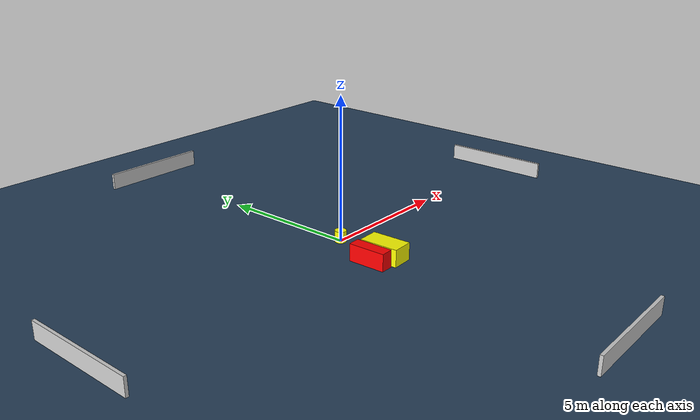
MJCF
<?xml version="1.0" ?>
<mujoco model="generated_environment">
  <option timestep="0.01" integrator="RK4" cone="elliptic"/>
  <default>
    <geom density="1"/>
  </default>
  <asset>
    <texture builtin="gradient" height="3072" name="skybox" rgb1="0.3 0.5 0.7" rgb2="0 0 0" type="skybox" width="512"/>
    <texture builtin="checker" height="300" name="groundplane" rgb1="0.2 0.3 0.4" rgb2="0.1 0.2 0.3" type="2d" width="300"/>
    <material name="groundplane" reflectance="0.2" texrepeat="5 5" texture="groundplane"/>
  </asset>
  <worldbody>
    <light dir="0 0 -1" directional="true" pos="0 0 1.5"/>
    <geom condim="3" friction="0.5 0.005 0.001" material="groundplane" name="floor" pos="0 0 0" size="0 0 0.05" type="plane"/>
    <body name="walls">
      <geom name="wall_1" condim="4" pos="-10.0 0.0 0.3" rgba="0.800000011920929 0.800000011920929 0.800000011920929 1.0" size="0.05 2.0 0.3" type="box"/>
      <geom name="wall_2" condim="4" pos="10.0 0.0 0.3" rgba="0.800000011920929 0.800000011920929 0.800000011920929 1.0" size="0.05 2.0 0.3" type="box"/>
      <geom name="wall_3" condim="4" pos="0.0 -10.0 0.3" rgba="0.800000011920929 0.800000011920929 0.800000011920929 1.0" size="2.0 0.05 0.3" type="box"/>
      <geom name="wall_4" condim="4" pos="0.0 10.0 0.3" rgba="0.800000011920929 0.800000011920929 0.800000011920929 1.0" size="2.0 0.05 0.3" type="box"/>
    </body>
    <body name="robot">
      <joint name="joint_x" type="slide" pos="0 0 0" axis="1 0 0"/>
      <joint name="joint_y" type="slide" pos="0 0 0" axis="0 1 0"/>
      <geom name="robot" type="cylinder" pos="0.0 0.0 0.2" size="0.2 0.2 0.0" mass="5.0" friction="1.0 0.005 0.0001" condim="4" rgba="1.0 1.0 0.0 1.0"/>
    </body>
    <body name="obstacle_1_movable">
      <geom name="obstacle_1_movable" condim="4" pos="-0.0786143681397798 -1.92602298023985 0.3" euler="0 0 2.425433939606947" friction="0.0 0.005 0.001" rgba="1.0 1.0 0.0 1.0" size="0.37498930771600525 0.6875727795664757 0.3" type="box" mass="0.1"/>
      <joint type="free"/>
    </body>
    <body name="obstacle_2_static">
      <geom name="obstacle_2_static" condim="4" pos="-0.7326814711474486 -1.8498801689140572 0.3" euler="0 0 1.6521992612885805" friction="0.0 0.005 0.001" rgba="1.0 0.0 0.0 1.0" size="0.21869428580376038 0.6532900979367371 0.3" type="box"/>
    </body>
  </worldbody>
  <actuator>
    <motor name="actuator_x" joint="joint_x" gear="1" ctrlrange="-1 1"/>
    <motor name="actuator_y" joint="joint_y" gear="1" ctrlrange="-1 1"/>
  </actuator>
</mujoco>
